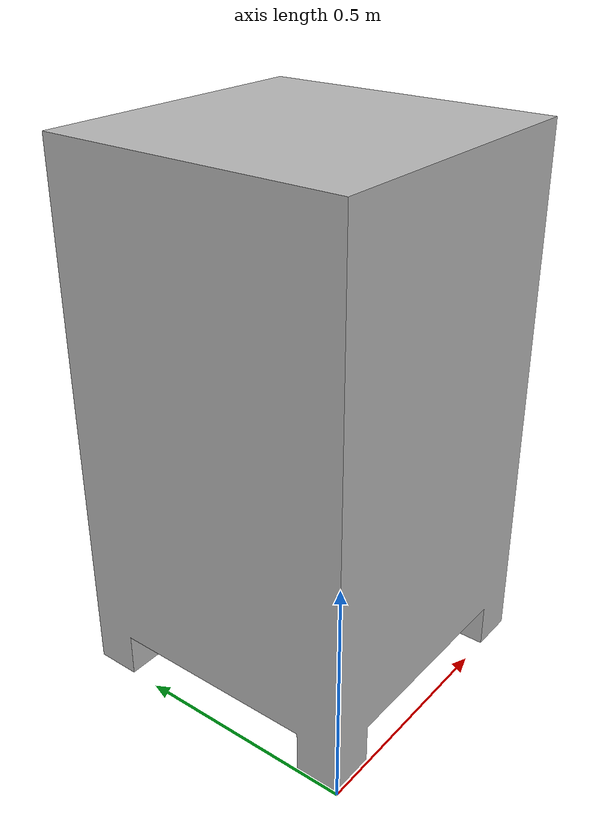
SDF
<?xml version="1.0" ?>
<sdf version="1.6">
  <model name="kutija1">
    <static>true</static>
    <link name="base_link">

      <visual name="visual">
        <geometry>
          <mesh>
            <uri>model://kutija1/meshes/crta_kutija1.STL</uri>
            <scale>0.001 0.001 0.001</scale>
          </mesh>
        </geometry>
      </visual>

      <collision name="collision">
       <pose>0.335 0.335 0.6 0 0 0</pose>
        <geometry>
         <box>
          <size>0.67 0.67 1.2</size> <!-- Prilagodi veličini stolca -->
         </box>
        </geometry>
       </collision>

    </link>
  </model>
</sdf>
